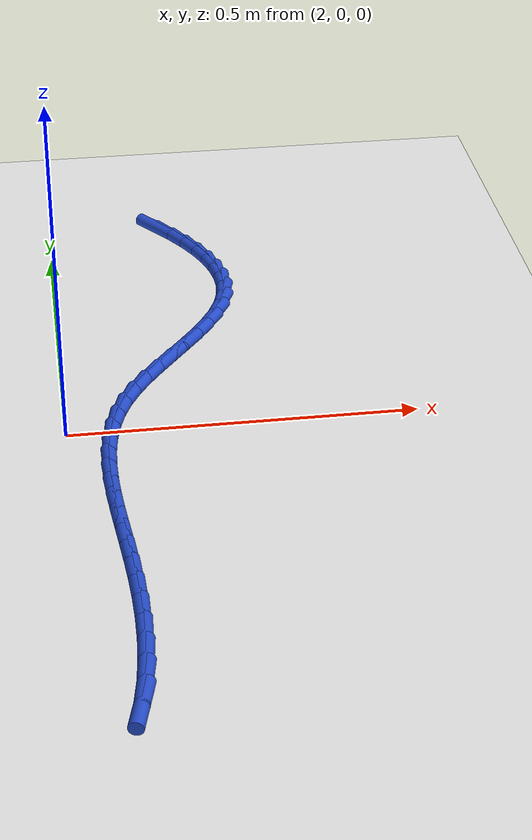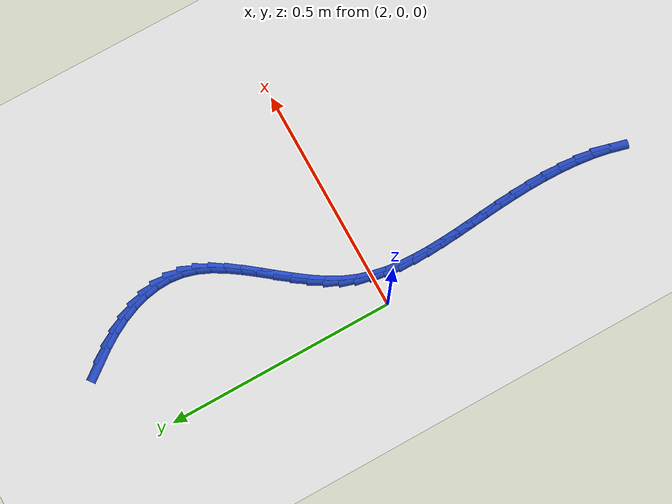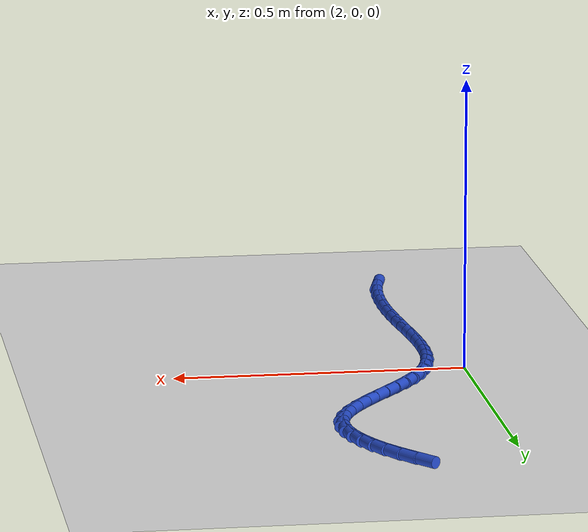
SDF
<sdf version="1.6">
 <world name="default">
  <model name="ground_plane">
   <static>1</static>
   <link name="link">
    <collision name="collision">
     <geometry><plane><normal>0 0 1</normal><size>100 100</size></plane></geometry>
     <surface><friction><ode><mu>100</mu><mu2>50</mu2></ode></friction></surface>
    </collision>
    <visual name="visual">
     <cast_shadows>0</cast_shadows>
     <geometry><plane><normal>0 0 1</normal><size>100 100</size></plane></geometry>
     <material>
      <script><uri>file://media/materials/scripts/gazebo.material</uri><name>Gazebo/WhiteGlow</name></script>
     </material>
    </visual>
   </link>
  </model>
  <model name="line">
   <link name="link_91">
    <pose>2.178065882537531 0.5738753923368812 0.01 0 1.57 -0.9181031506975984</pose>
    <collision name="collision">
     <geometry><cylinder><radius>0.01</radius><length>0.08</length></cylinder></geometry>
    </collision>
    <visual name="visual">
     <material>
      <script><name>Gazebo/Blue</name><uri>file://media/materials/scripts/gazebo.material</uri></script>
     </material>
     <geometry><cylinder><radius>0.01</radius><length>0.08</length></cylinder></geometry>
    </visual>
   </link>
   <link name="link_92">
    <pose>2.200013001667511 0.5451661844471984 0.01 0 1.57 -0.98934659656645</pose>
    <collision name="collision">
     <geometry><cylinder><radius>0.01</radius><length>0.08</length></cylinder></geometry>
    </collision>
    <visual name="visual">
     <material>
      <script><name>Gazebo/Blue</name><uri>file://media/materials/scripts/gazebo.material</uri></script>
     </material>
     <geometry><cylinder><radius>0.01</radius><length>0.08</length></cylinder></geometry>
    </visual>
   </link>
   <link name="link_93">
    <pose>2.2192098693529485 0.5159579859298599 0.01 0 1.57 -1.0705470459926498</pose>
    <collision name="collision">
     <geometry><cylinder><radius>0.01</radius><length>0.08</length></cylinder></geometry>
    </collision>
    <visual name="visual">
     <material>
      <script><name>Gazebo/Blue</name><uri>file://media/materials/scripts/gazebo.material</uri></script>
     </material>
     <geometry><cylinder><radius>0.01</radius><length>0.08</length></cylinder></geometry>
    </visual>
   </link>
   <link name="link_94">
    <pose>2.2353712576692035 0.4863922827667563 0.01 0 1.57 -1.1637198695940443</pose>
    <collision name="collision">
     <geometry><cylinder><radius>0.01</radius><length>0.08</length></cylinder></geometry>
    </collision>
    <visual name="visual">
     <material>
      <script><name>Gazebo/Blue</name><uri>file://media/materials/scripts/gazebo.material</uri></script>
     </material>
     <geometry><cylinder><radius>0.01</radius><length>0.08</length></cylinder></geometry>
    </visual>
   </link>
   <link name="link_95">
    <pose>2.248211938691631 0.456610560939776 0.01 0 1.57 -1.27082310501815</pose>
    <collision name="collision">
     <geometry><cylinder><radius>0.01</radius><length>0.08</length></cylinder></geometry>
    </collision>
    <visual name="visual">
     <material>
      <script><name>Gazebo/Blue</name><uri>file://media/materials/scripts/gazebo.material</uri></script>
     </material>
     <geometry><cylinder><radius>0.01</radius><length>0.08</length></cylinder></geometry>
    </visual>
   </link>
   <link name="link_96">
    <pose>2.257446684495589 0.42675430643080897 0.01 0 1.57 -1.3933047175192</pose>
    <collision name="collision">
     <geometry><cylinder><radius>0.01</radius><length>0.08</length></cylinder></geometry>
    </collision>
    <visual name="visual">
     <material>
      <script><name>Gazebo/Blue</name><uri>file://media/materials/scripts/gazebo.material</uri></script>
     </material>
     <geometry><cylinder><radius>0.01</radius><length>0.08</length></cylinder></geometry>
    </visual>
   </link>
   <link name="link_97">
    <pose>2.262790267156434 0.39696500522174444 0.01 0 1.57 -1.5313591249666636</pose>
    <collision name="collision">
     <geometry><cylinder><radius>0.01</radius><length>0.08</length></cylinder></geometry>
    </collision>
    <visual name="visual">
     <material>
      <script><name>Gazebo/Blue</name><uri>file://media/materials/scripts/gazebo.material</uri></script>
     </material>
     <geometry><cylinder><radius>0.01</radius><length>0.08</length></cylinder></geometry>
    </visual>
   </link>
   <link name="link_98">
    <pose>2.263957458749525 0.36738414329447144 0.01 0 1.57 1.4585664619629417</pose>
    <collision name="collision">
     <geometry><cylinder><radius>0.01</radius><length>0.08</length></cylinder></geometry>
    </collision>
    <visual name="visual">
     <material>
      <script><name>Gazebo/Blue</name><uri>file://media/materials/scripts/gazebo.material</uri></script>
     </material>
     <geometry><cylinder><radius>0.01</radius><length>0.08</length></cylinder></geometry>
    </visual>
   </link>
   <link name="link_99">
    <pose>2.2606630313502176 0.3381532066308799 0.01 0 1.57 1.2985018219189837</pose>
    <collision name="collision">
     <geometry><cylinder><radius>0.01</radius><length>0.08</length></cylinder></geometry>
    </collision>
    <visual name="visual">
     <material>
      <script><name>Gazebo/Blue</name><uri>file://media/materials/scripts/gazebo.material</uri></script>
     </material>
     <geometry><cylinder><radius>0.01</radius><length>0.08</length></cylinder></geometry>
    </visual>
   </link>
   <link name="link_100">
    <pose>2.2526371346494667 0.30941024284330093 0.01 0 1.57 1.1537505740732081</pose>
    <collision name="collision">
     <geometry><cylinder><radius>0.01</radius><length>0.08</length></cylinder></geometry>
    </collision>
    <visual name="visual">
     <material>
      <script><name>Gazebo/Blue</name><uri>file://media/materials/scripts/gazebo.material</uri></script>
     </material>
     <geometry><cylinder><radius>0.01</radius><length>0.08</length></cylinder></geometry>
    </visual>
   </link>
   <link name="link_101">
    <pose>2.2401289617155893 0.28117724364862895 0.01 0 1.57 1.0462675634616325</pose>
    <collision name="collision">
     <geometry><cylinder><radius>0.01</radius><length>0.08</length></cylinder></geometry>
    </collision>
    <visual name="visual">
     <material>
      <script><name>Gazebo/Blue</name><uri>file://media/materials/scripts/gazebo.material</uri></script>
     </material>
     <geometry><cylinder><radius>0.01</radius><length>0.08</length></cylinder></geometry>
    </visual>
   </link>
   <link name="link_102">
    <pose>2.2240196366319824 0.2533349036718201 0.01 0 1.57 0.9727018626979176</pose>
    <collision name="collision">
     <geometry><cylinder><radius>0.01</radius><length>0.08</length></cylinder></geometry>
    </collision>
    <visual name="visual">
     <material>
      <script><name>Gazebo/Blue</name><uri>file://media/materials/scripts/gazebo.material</uri></script>
     </material>
     <geometry><cylinder><radius>0.01</radius><length>0.08</length></cylinder></geometry>
    </visual>
   </link>
   <link name="link_103">
    <pose>2.2052285130737794 0.22575536956343475 0.01 0 1.57 0.9279920915035004</pose>
    <collision name="collision">
     <geometry><cylinder><radius>0.01</radius><length>0.08</length></cylinder></geometry>
    </collision>
    <visual name="visual">
     <material>
      <script><name>Gazebo/Blue</name><uri>file://media/materials/scripts/gazebo.material</uri></script>
     </material>
     <geometry><cylinder><radius>0.01</radius><length>0.08</length></cylinder></geometry>
    </visual>
   </link>
   <link name="link_104">
    <pose>2.1846749447161105 0.19831078797403176 0.01 0 1.57 0.9084737521868997</pose>
    <collision name="collision">
     <geometry><cylinder><radius>0.01</radius><length>0.08</length></cylinder></geometry>
    </collision>
    <visual name="visual">
     <material>
      <script><name>Gazebo/Blue</name><uri>file://media/materials/scripts/gazebo.material</uri></script>
     </material>
     <geometry><cylinder><radius>0.01</radius><length>0.08</length></cylinder></geometry>
    </visual>
   </link>
   <link name="link_105">
    <pose>2.1632782852341075 0.17087330555417124 0.01 0 1.57 0.9123309753477675</pose>
    <collision name="collision">
     <geometry><cylinder><radius>0.01</radius><length>0.08</length></cylinder></geometry>
    </collision>
    <visual name="visual">
     <material>
      <script><name>Gazebo/Blue</name><uri>file://media/materials/scripts/gazebo.material</uri></script>
     </material>
     <geometry><cylinder><radius>0.01</radius><length>0.08</length></cylinder></geometry>
    </visual>
   </link>
   <link name="link_106">
    <pose>2.141957888302904 0.1433150689544123 0.01 0 1.57 0.9396139234920863</pose>
    <collision name="collision">
     <geometry><cylinder><radius>0.01</radius><length>0.08</length></cylinder></geometry>
    </collision>
    <visual name="visual">
     <material>
      <script><name>Gazebo/Blue</name><uri>file://media/materials/scripts/gazebo.material</uri></script>
     </material>
     <geometry><cylinder><radius>0.01</radius><length>0.08</length></cylinder></geometry>
    </visual>
   </link>
   <link name="link_107">
    <pose>2.121633107597629 0.11550822482531486 0.01 0 1.57 0.9921629962907595</pose>
    <collision name="collision">
     <geometry><cylinder><radius>0.01</radius><length>0.08</length></cylinder></geometry>
    </collision>
    <visual name="visual">
     <material>
      <script><name>Gazebo/Blue</name><uri>file://media/materials/scripts/gazebo.material</uri></script>
     </material>
     <geometry><cylinder><radius>0.01</radius><length>0.08</length></cylinder></geometry>
    </visual>
   </link>
   <link name="link_108">
    <pose>2.103223296793416 0.08732491981743798 0.01 0 1.57 1.0733633466644994</pose>
    <collision name="collision">
     <geometry><cylinder><radius>0.01</radius><length>0.08</length></cylinder></geometry>
    </collision>
    <visual name="visual">
     <material>
      <script><name>Gazebo/Blue</name><uri>file://media/materials/scripts/gazebo.material</uri></script>
     </material>
     <geometry><cylinder><radius>0.01</radius><length>0.08</length></cylinder></geometry>
    </visual>
   </link>
   <link name="link_109">
    <pose>2.087646719007942 0.05863739992627179 0.01 0 1.57 1.1771288896743999</pose>
    <collision name="collision">
     <geometry><cylinder><radius>0.01</radius><length>0.08</length></cylinder></geometry>
    </collision>
    <visual name="visual">
     <material>
      <script><name>Gazebo/Blue</name><uri>file://media/materials/scripts/gazebo.material</uri></script>
     </material>
     <geometry><cylinder><radius>0.01</radius><length>0.08</length></cylinder></geometry>
    </visual>
   </link>
   <link name="link_110">
    <pose>2.0754817721051086 0.02934887135918616 0.01 0 1.57 1.2786751005224917</pose>
    <collision name="collision">
     <geometry><cylinder><radius>0.01</radius><length>0.08</length></cylinder></geometry>
    </collision>
    <visual name="visual">
     <material>
      <script><name>Gazebo/Blue</name><uri>file://media/materials/scripts/gazebo.material</uri></script>
     </material>
     <geometry><cylinder><radius>0.01</radius><length>0.08</length></cylinder></geometry>
    </visual>
   </link>
   <link name="link_111">
    <pose>2.0664866214258857 -0.0005627401444579246 0.01 0 1.57 1.3709054333164725</pose>
    <collision name="collision">
     <geometry><cylinder><radius>0.01</radius><length>0.08</length></cylinder></geometry>
    </collision>
    <visual name="visual">
     <material>
      <script><name>Gazebo/Blue</name><uri>file://media/materials/scripts/gazebo.material</uri></script>
     </material>
     <geometry><cylinder><radius>0.01</radius><length>0.08</length></cylinder></geometry>
    </visual>
   </link>
   <link name="link_112">
    <pose>2.0602981666543974 -0.031108462083714795 0.01 0 1.57 1.451305580936712</pose>
    <collision name="collision">
     <geometry><cylinder><radius>0.01</radius><length>0.08</length></cylinder></geometry>
    </collision>
    <visual name="visual">
     <material>
      <script><name>Gazebo/Blue</name><uri>file://media/materials/scripts/gazebo.material</uri></script>
     </material>
     <geometry><cylinder><radius>0.01</radius><length>0.08</length></cylinder></geometry>
    </visual>
   </link>
   <link name="link_113">
    <pose>2.0565533074747706 -0.06229932195763827 0.01 0 1.57 1.518582623619476</pose>
    <collision name="collision">
     <geometry><cylinder><radius>0.01</radius><length>0.08</length></cylinder></geometry>
    </collision>
    <visual name="visual">
     <material>
      <script><name>Gazebo/Blue</name><uri>file://media/materials/scripts/gazebo.material</uri></script>
     </material>
     <geometry><cylinder><radius>0.01</radius><length>0.08</length></cylinder></geometry>
    </visual>
   </link>
   <link name="link_114">
    <pose>2.0548889435711297 -0.09414634726528319 0.01 0 1.57 -1.5691653169685305</pose>
    <collision name="collision">
     <geometry><cylinder><radius>0.01</radius><length>0.08</length></cylinder></geometry>
    </collision>
    <visual name="visual">
     <material>
      <script><name>Gazebo/Blue</name><uri>file://media/materials/scripts/gazebo.material</uri></script>
     </material>
     <geometry><cylinder><radius>0.01</radius><length>0.08</length></cylinder></geometry>
    </visual>
   </link>
   <link name="link_115">
    <pose>2.0549419746276008 -0.12666056550570187 0.01 0 1.57 -1.528422721203839</pose>
    <collision name="collision">
     <geometry><cylinder><radius>0.01</radius><length>0.08</length></cylinder></geometry>
    </collision>
    <visual name="visual">
     <material>
      <script><name>Gazebo/Blue</name><uri>file://media/materials/scripts/gazebo.material</uri></script>
     </material>
     <geometry><cylinder><radius>0.01</radius><length>0.08</length></cylinder></geometry>
    </visual>
   </link>
   <link name="link_116">
    <pose>2.056349300328309 -0.15985300417794912 0.01 0 1.57 -1.5001231800926564</pose>
    <collision name="collision">
     <geometry><cylinder><radius>0.01</radius><length>0.08</length></cylinder></geometry>
    </collision>
    <visual name="visual">
     <material>
      <script><name>Gazebo/Blue</name><uri>file://media/materials/scripts/gazebo.material</uri></script>
     </material>
     <geometry><cylinder><radius>0.01</radius><length>0.08</length></cylinder></geometry>
    </visual>
   </link>
   <link name="link_117">
    <pose>2.0587478203573797 -0.1937346907810787 0.01 0 1.57 -1.4834987450526138</pose>
    <collision name="collision">
     <geometry><cylinder><radius>0.01</radius><length>0.08</length></cylinder></geometry>
    </collision>
    <visual name="visual">
     <material>
      <script><name>Gazebo/Blue</name><uri>file://media/materials/scripts/gazebo.material</uri></script>
     </material>
     <geometry><cylinder><radius>0.01</radius><length>0.08</length></cylinder></geometry>
    </visual>
   </link>
   <link name="link_118">
    <pose>2.0617744343989393 -0.22831665281414548 0.01 0 1.57 -1.4778008647015062</pose>
    <collision name="collision">
     <geometry><cylinder><radius>0.01</radius><length>0.08</length></cylinder></geometry>
    </collision>
    <visual name="visual">
     <material>
      <script><name>Gazebo/Blue</name><uri>file://media/materials/scripts/gazebo.material</uri></script>
     </material>
     <geometry><cylinder><radius>0.01</radius><length>0.08</length></cylinder></geometry>
    </visual>
   </link>
   <link name="link_119">
    <pose>2.065066042137113 -0.2636099177762018 0.01 0 1.57 -1.4823576695746805</pose>
    <collision name="collision">
     <geometry><cylinder><radius>0.01</radius><length>0.08</length></cylinder></geometry>
    </collision>
    <visual name="visual">
     <material>
      <script><name>Gazebo/Blue</name><uri>file://media/materials/scripts/gazebo.material</uri></script>
     </material>
     <geometry><cylinder><radius>0.01</radius><length>0.08</length></cylinder></geometry>
    </visual>
   </link>
   <link name="link_120">
    <pose>2.068259543256026 -0.2996255131663023 0.01 0 1.57 -1.4965826173157375</pose>
    <collision name="collision">
     <geometry><cylinder><radius>0.01</radius><length>0.08</length></cylinder></geometry>
    </collision>
    <visual name="visual">
     <material>
      <script><name>Gazebo/Blue</name><uri>file://media/materials/scripts/gazebo.material</uri></script>
     </material>
     <geometry><cylinder><radius>0.01</radius><length>0.08</length></cylinder></geometry>
    </visual>
   </link>
   <link name="link_121">
    <pose>2.070991837439803 -0.33637446648350094 0.01 0 1.57 -1.5199490599115923</pose>
    <collision name="collision">
     <geometry><cylinder><radius>0.01</radius><length>0.08</length></cylinder></geometry>
    </collision>
    <visual name="visual">
     <material>
      <script><name>Gazebo/Blue</name><uri>file://media/materials/scripts/gazebo.material</uri></script>
     </material>
     <geometry><cylinder><radius>0.01</radius><length>0.08</length></cylinder></geometry>
    </visual>
   </link>
   <link name="link_122">
    <pose>2.072899898493613 -0.37386746250493585 0.01 0 1.57 -1.5511593014193992</pose>
    <collision name="collision">
     <geometry><cylinder><radius>0.01</radius><length>0.08</length></cylinder></geometry>
    </collision>
    <visual name="visual">
     <material>
      <script><name>Gazebo/Blue</name><uri>file://media/materials/scripts/gazebo.material</uri></script>
     </material>
     <geometry><cylinder><radius>0.01</radius><length>0.08</length></cylinder></geometry>
    </visual>
   </link>
   <link name="link_123">
    <pose>2.073648538575883 -0.4119864666357408 0.01 0 1.57 1.55313840459721</pose>
    <collision name="collision">
     <geometry><cylinder><radius>0.01</radius><length>0.08</length></cylinder></geometry>
    </collision>
    <visual name="visual">
     <material>
      <script><name>Gazebo/Blue</name><uri>file://media/materials/scripts/gazebo.material</uri></script>
     </material>
     <geometry><cylinder><radius>0.01</radius><length>0.08</length></cylinder></geometry>
    </visual>
   </link>
   <link name="link_124">
    <pose>2.072972070627302 -0.450292085579948 0.01 0 1.57 1.5088656870184871</pose>
    <collision name="collision">
     <geometry><cylinder><radius>0.01</radius><length>0.08</length></cylinder></geometry>
    </collision>
    <visual name="visual">
     <material>
      <script><name>Gazebo/Blue</name><uri>file://media/materials/scripts/gazebo.material</uri></script>
     </material>
     <geometry><cylinder><radius>0.01</radius><length>0.08</length></cylinder></geometry>
    </visual>
   </link>
   <link name="link_125">
    <pose>2.0706154749216084 -0.48829560227598295 0.01 0 1.57 1.4559735452809632</pose>
    <collision name="collision">
     <geometry><cylinder><radius>0.01</radius><length>0.08</length></cylinder></geometry>
    </collision>
    <visual name="visual">
     <material>
      <script><name>Gazebo/Blue</name><uri>file://media/materials/scripts/gazebo.material</uri></script>
     </material>
     <geometry><cylinder><radius>0.01</radius><length>0.08</length></cylinder></geometry>
    </visual>
   </link>
   <link name="link_126">
    <pose>2.0663237317325405 -0.5255082996622717 0.01 0 1.57 1.3923276082107308</pose>
    <collision name="collision">
     <geometry><cylinder><radius>0.01</radius><length>0.08</length></cylinder></geometry>
    </collision>
    <visual name="visual">
     <material>
      <script><name>Gazebo/Blue</name><uri>file://media/materials/scripts/gazebo.material</uri></script>
     </material>
     <geometry><cylinder><radius>0.01</radius><length>0.08</length></cylinder></geometry>
    </visual>
   </link>
   <link name="link_127">
    <pose>2.059841821333837 -0.5614414606772375 0.01 0 1.57 1.3152162581909672</pose>
    <collision name="collision">
     <geometry><cylinder><radius>0.01</radius><length>0.08</length></cylinder></geometry>
    </collision>
    <visual name="visual">
     <material>
      <script><name>Gazebo/Blue</name><uri>file://media/materials/scripts/gazebo.material</uri></script>
     </material>
     <geometry><cylinder><radius>0.01</radius><length>0.08</length></cylinder></geometry>
    </visual>
   </link>
  </model>
 </world>
</sdf>
